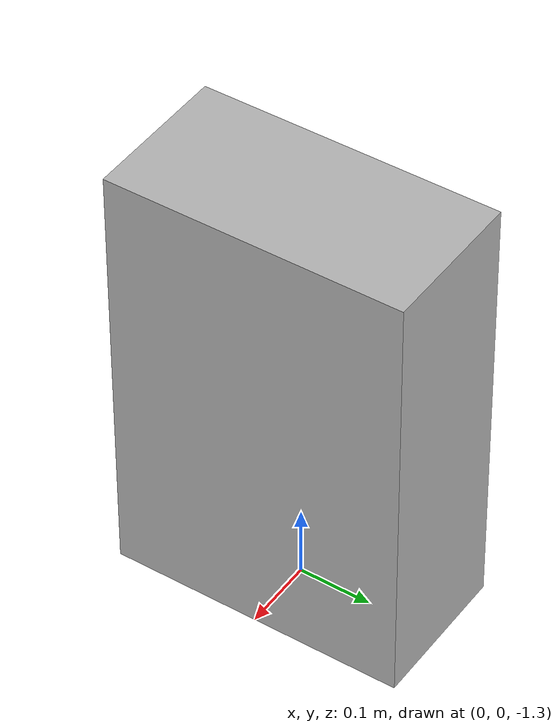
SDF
<?xml version="1.0" ?>
<sdf version="1.4">
    <world name="default">
        <include>
            <uri>model://sun</uri>
        </include>
        <physics type="rtql8">
            <gravity>0 0 -10.0</gravity>
        </physics>
        <!-- 25.3kg total mass -->
        <model name="test_model">
            <pose>0 0 0 0 0 0</pose>
            <link name="link1">
                <pose>0 0 -1 0 0 0</pose>
                <inertial>
                    <inertia>
                        <ixx>1</ixx>
                        <ixy>0</ixy>
                        <ixz>0</ixz>
                        <iyy>1</iyy>
                        <iyz>0</iyz>
                        <izz>1</izz>
                    </inertia>
                    <mass>1.0</mass>
                </inertial>
                <visual name="visual">
                    <pose>0 0 0 0 0 0</pose>
                    <geometry>
                        <box>
                            <size>0.2 0.4 0.6</size>
                        </box>
                    </geometry>
                    <material>
                        <script>Gazebo/WoodPallet</script>
                    </material>
                </visual>
            </link>
            <joint name="joint01" type="revolute">
                <pose>0 -0.5 0 0 0 0</pose>
                <axis>
                    <xyz>1.0 0.0 0.0</xyz>
                </axis>
                <parent>
                    <link_name>world</link_name>
                </parent>
                <child>
                    <link_name>link1</link_name>
                </child>
            </joint>
        </model>
    </world>
</sdf>
